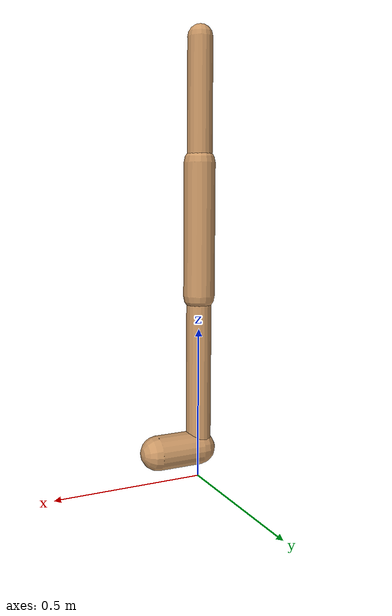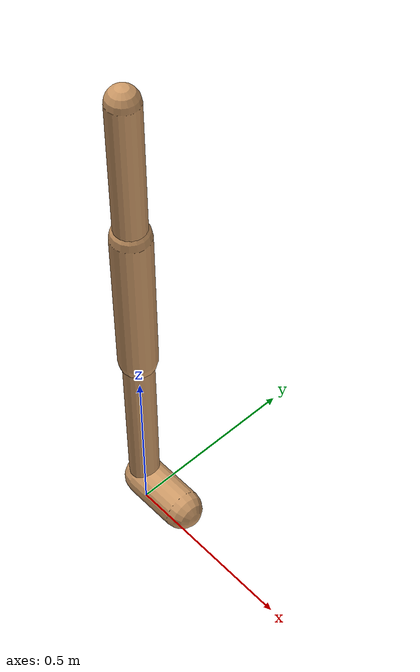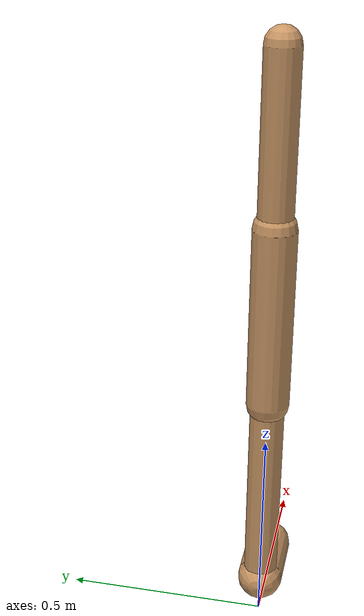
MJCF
<mujoco model="walker2d">
  <compiler angle="degree" coordinate="global" inertiafromgeom="true" />
  <default>
    <joint armature="0.01" damping=".1" limited="true" />
    <geom conaffinity="0" condim="3" contype="1" density="1000" friction="0.8 .1 .1" rgba="0.8 0.6 .4 1" />
  </default>
  <option integrator="RK4" timestep="0.002" />
  <worldbody>

    <body name="torso" pos="0 0 -0.026710797172549466">
      <joint armature="0" axis="1 0 0" damping="0" limited="false" name="ignorex" pos="0 0 0" stiffness="0" type="slide" />
      <joint armature="0" axis="0 0 1" damping="0" limited="false" name="ignorez" pos="0 0 0" ref="1.25" stiffness="0" type="slide" />
      <joint armature="0" axis="0 1 0" damping="0" limited="false" name="ignorey" pos="0 0 0" stiffness="0" type="hinge" />
      <geom fromto="0 0 1.45 0 0 1.05" name="torso_geom" size="0.04166045608559659" type="capsule" />
      <body name="thigh">
        <joint axis="0 -1 0" name="thigh_joint" pos="0 0 1.05" range="-150 0" type="hinge" />
        <geom fromto="0.0 0.0 1.05 0.0 0.0 0.6126524828712077" name="thigh_geom" size="0.05179802987450436" type="capsule" />
        <body name="leg" pos="0.0 0.0 0.012652482871207682">
          <joint axis="0 -1 0" name="leg_joint" pos="0 0 0.6" range="-150 0" type="hinge" />
          <geom fromto="0.0 0.0 0.6 0.0 0.0 0.11405831430134183" name="leg_geom" size="0.04143842389960349" type="capsule" />
          <body name="foot" pos="0.0 0.0 0.014058314301341829">
            <joint axis="0 -1 0" name="foot_joint" pos="0 0 0.1" range="-45 45" type="hinge" />
            <geom fromto="0.0 0.0 0.1 0.15051401306806284 0.0 0.1" name="foot_geom" size="0.056046739508504854" type="capsule" />
          </body>
        </body>
      </body>

      <body name="thigh_left">
        <joint axis="0 -1 0" name="thigh_left_joint" pos="0 0 1.05" range="-150 0" type="hinge" />
        <geom fromto="0.0 0.0 1.05 0.0 0.0 0.6126524828712077" name="thigh_left_geom" rgba=".7 .3 .6 1" size="0.05179802987450436" type="capsule" />
        <body name="leg_left" pos="0.0 0.0 0.012652482871207682">
          <joint axis="0 -1 0" name="leg_left_joint" pos="0 0 0.6" range="-150 0" type="hinge" />
          <geom fromto="0.0 0.0 0.6 0.0 0.0 0.11405831430134183" name="leg_left_geom" rgba=".7 .3 .6 1" size="0.04143842389960349" type="capsule" />
          <body name="foot_left" pos="0.0 0.0 0.014058314301341829">
            <joint axis="0 -1 0" name="foot_left_joint" pos="0 0 0.1" range="-45 45" type="hinge" />
            <geom fromto="0.0 0.0 0.1 0.15051401306806284 0.0 0.1" name="foot_left_geom" rgba=".7 .3 .6 1" size="0.056046739508504854" type="capsule" />
          </body>
        </body>
      </body>
    </body>
  </worldbody>
  <actuator>

    <motor ctrllimited="true" ctrlrange="-1.0 1.0" gear="100" joint="thigh_joint" />
    <motor ctrllimited="true" ctrlrange="-1.0 1.0" gear="100" joint="leg_joint" />
    <motor ctrllimited="true" ctrlrange="-1.0 1.0" gear="100" joint="foot_joint" />
    <motor ctrllimited="true" ctrlrange="-1.0 1.0" gear="100" joint="thigh_left_joint" />
    <motor ctrllimited="true" ctrlrange="-1.0 1.0" gear="100" joint="leg_left_joint" />
    <motor ctrllimited="true" ctrlrange="-1.0 1.0" gear="100" joint="foot_left_joint" />

  </actuator>
</mujoco>
